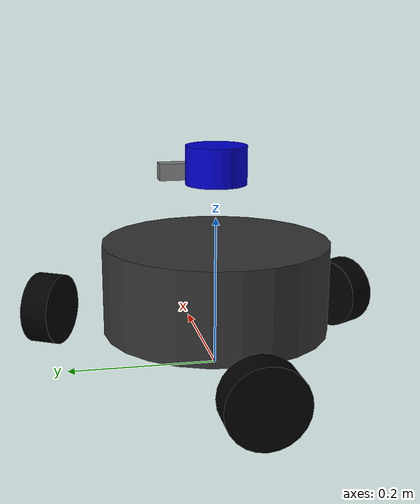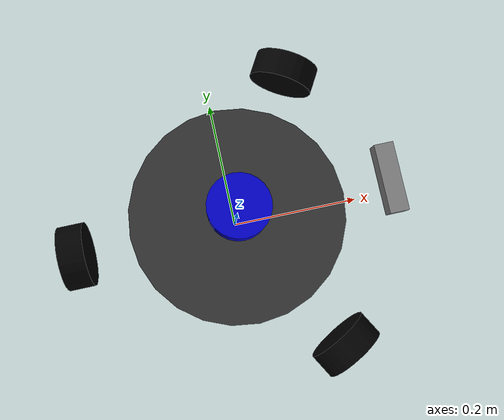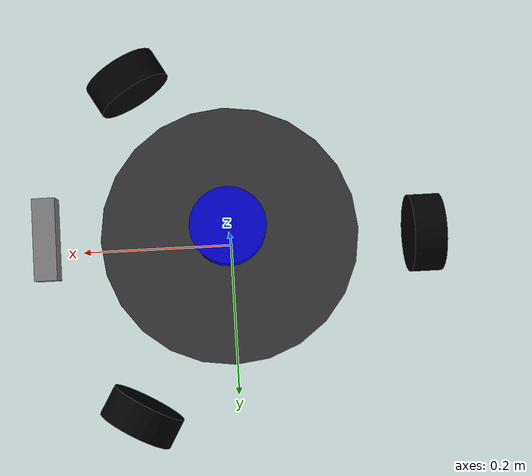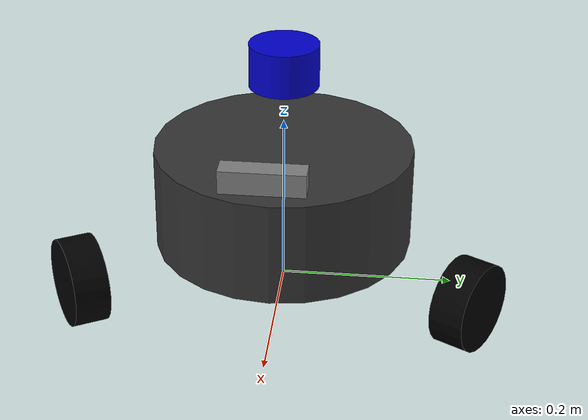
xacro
<?xml version="1.0"?>
<robot name="omni_robot" xmlns:xacro="http://ros.org/wiki/xacro">

  <!--         Parameters            -->
  <xacro:property name="wheel_radius"  value="0.050"/>
  <xacro:property name="wheel_width"   value="0.040"/>
  <xacro:property name="wheel_base"    value="0.250"/>
  <xacro:property name="base_radius"   value="0.150"/>
  <xacro:property name="base_height"   value="0.120"/>
  <xacro:property name="chassis_mass"  value="4.0"/>
  <xacro:property name="wheel_mass"    value="0.3"/>
  <xacro:property name="lidar_height"  value="0.100"/>
  <xacro:property name="camera_x"      value="0.200"/>
  <xacro:property name="camera_z"      value="0.060"/>
  <!-- pi is a xacro built-in: ${pi} → 3.14159... (no need to redefine) -->

  <!--         Materials             -->
  <material name="dark_gray"><color rgba="0.2 0.2 0.2 1.0"/></material>
  <material name="gray">     <color rgba="0.5 0.5 0.5 1.0"/></material>
  <material name="blue">     <color rgba="0.0 0.0 0.8 1.0"/></material>
  <material name="black">    <color rgba="0.0 0.0 0.0 1.0"/></material>
  <material name="red">      <color rgba="0.8 0.0 0.0 1.0"/></material>

  <!-- ros2_control removed: using Gazebo Harmonic native plugins
       VelocityControl  → direct body motion via /cmd_vel
       OdometryPublisher → publishes /odom and TF                    -->

  <!--         Macros                -->
  <xacro:macro name="omni_wheel" params="name pos_x pos_y wheel_angle">
    <link name="${name}">
      <visual>
        <origin xyz="0 0 0" rpy="${pi/2} 0 0"/>
        <geometry>
          <cylinder radius="${wheel_radius}" length="${wheel_width}"/>
        </geometry>
        <material name="black"/>
      </visual>
      <collision>
        <origin xyz="0 0 0" rpy="${pi/2} 0 0"/>
        <geometry>
          <cylinder radius="${wheel_radius}" length="${wheel_width}"/>
        </geometry>
      </collision>
      <inertial>
        <mass value="${wheel_mass}"/>
        <inertia
          ixx="${wheel_mass/12*(3*wheel_radius*wheel_radius + wheel_width*wheel_width)}"
          ixy="0" ixz="0"
          iyy="${wheel_mass/12*(3*wheel_radius*wheel_radius + wheel_width*wheel_width)}"
          iyz="0"
          izz="${wheel_mass/2*wheel_radius*wheel_radius}"/>
      </inertial>
    </link>

    <joint name="${name}_joint" type="continuous">
      <parent link="base_link"/>
      <child link="${name}"/>
      <!-- wheel center = base_link_z - base_height/2 = 0.11 - 0.06 = 0.05m (ground level) -->
      <origin xyz="${pos_x} ${pos_y} ${-base_height/2}"
              rpy="0 0 ${wheel_angle}"/>
      <axis xyz="0 1 0"/>
    </joint>
  </xacro:macro>

  <!--         Links                 -->

  <link name="base_footprint"/>
  <joint name="base_footprint_joint" type="fixed">
    <parent link="base_footprint"/>
    <child link="base_link"/>
    <!-- wheel center is wheel_radius above ground; body sits above that -->
    <!-- base_link center = wheel_radius + base_height/2 = 0.05 + 0.06 = 0.11 m -->
    <origin xyz="0 0 ${wheel_radius + base_height/2}" rpy="0 0 0"/>
  </joint>

  <!-- Main body -->
  <link name="base_link">
    <visual>
      <origin xyz="0 0 0" rpy="0 0 0"/>
      <geometry>
        <cylinder radius="${base_radius}" length="${base_height}"/>
      </geometry>
      <material name="dark_gray"/>
    </visual>
    <collision>
      <origin xyz="0 0 0" rpy="0 0 0"/>
      <geometry>
        <cylinder radius="${base_radius}" length="${base_height}"/>
      </geometry>
    </collision>
    <inertial>
      <mass value="${chassis_mass}"/>
      <inertia
        ixx="${chassis_mass/12*(3*base_radius*base_radius + base_height*base_height)}"
        ixy="0" ixz="0"
        iyy="${chassis_mass/12*(3*base_radius*base_radius + base_height*base_height)}"
        iyz="0"
        izz="${chassis_mass/2*base_radius*base_radius}"/>
    </inertial>
  </link>

  <xacro:omni_wheel name="wheel_1"
    pos_x="${wheel_base * 0.5}"   pos_y="${-wheel_base * 0.866}"
    wheel_angle="${pi/6}"/>

  <xacro:omni_wheel name="wheel_2"
    pos_x="${wheel_base * 0.5}"   pos_y="${wheel_base * 0.866}"
    wheel_angle="${-pi/6}"/>

  <xacro:omni_wheel name="wheel_3"
    pos_x="${-wheel_base}"  pos_y="0.0"
    wheel_angle="${pi/2}"/>

  <!-- LiDAR link -->
  <link name="laser">
    <visual>
      <origin xyz="0 0 0" rpy="0 0 0"/>
      <geometry>
        <cylinder radius="0.04" length="0.05"/>
      </geometry>
      <material name="blue"/>
    </visual>
    <collision>
      <geometry>
        <cylinder radius="0.04" length="0.05"/>
      </geometry>
    </collision>
    <inertial>
      <mass value="0.1"/>
      <inertia ixx="0.001" ixy="0" ixz="0"
               iyy="0.001" iyz="0" izz="0.001"/>
    </inertial>
  </link>

  <joint name="laser_joint" type="fixed">
    <parent link="base_link"/>
    <child link="laser"/>
    <origin xyz="0 0 ${base_height/2 + lidar_height}" rpy="0 0 0"/>
  </joint>

  <!-- Camera link (Intel RealSense D435b) -->
  <link name="camera_link">
    <visual>
      <origin xyz="0 0 0" rpy="0 0 0"/>
      <geometry>
        <box size="0.025 0.090 0.025"/>
      </geometry>
      <material name="gray"/>
    </visual>
    <collision>
      <geometry>
        <box size="0.025 0.090 0.025"/>
      </geometry>
    </collision>
    <inertial>
      <mass value="0.08"/>
      <inertia ixx="0.001" ixy="0" ixz="0"
               iyy="0.001" iyz="0" izz="0.001"/>
    </inertial>
  </link>

  <joint name="camera_joint" type="fixed">
    <parent link="base_link"/>
    <child link="camera_link"/>
    <origin xyz="${camera_x} 0 ${base_height/2 + camera_z}" rpy="0 0 0"/>
  </joint>

  <link name="camera_optical_frame"/>
  <joint name="camera_optical_joint" type="fixed">
    <parent link="camera_link"/>
    <child link="camera_optical_frame"/>
    <origin xyz="0 0 0" rpy="${-pi/2} 0 ${-pi/2}"/>
  </joint>

  <!-- IMU link -->
  <link name="imu_link">
    <inertial>
      <mass value="0.01"/>
      <inertia ixx="0.0001" ixy="0" ixz="0"
               iyy="0.0001" iyz="0" izz="0.0001"/>
    </inertial>
  </link>

  <joint name="imu_joint" type="fixed">
    <parent link="base_link"/>
    <child link="imu_link"/>
    <origin xyz="0 0 0" rpy="0 0 0"/>
  </joint>

  <!--  Gazebo Harmonic Plugins      -->

  <!-- Holonomic body motion: ROS /cmd_vel → VelocityControl plugin
       Twist.linear.x/y → m/s, Twist.angular.z → rad/s (body frame) -->
  <gazebo>
    <plugin filename="gz-sim-velocity-control-system"
            name="gz::sim::systems::VelocityControl">
      <topic>/model/omni_robot/cmd_vel</topic>
    </plugin>
  </gazebo>

  <!-- Publishes joint angles → ros_gz_bridge bridges to /joint_states
       → robot_state_publisher updates wheel TFs (animation in RViz) -->
  <gazebo>
    <plugin filename="gz-sim-joint-state-publisher-system"
            name="gz::sim::systems::JointStatePublisher">
      <topic>/model/omni_robot/joint_states</topic>
    </plugin>
  </gazebo>

  <gazebo>
    <plugin filename="gz-sim-odometry-publisher-system"
            name="gz::sim::systems::OdometryPublisher">
      <odom_frame>odom</odom_frame>
      <robot_base_frame>base_link</robot_base_frame>
      <publish_tf>false</publish_tf>
      <odom_topic>/model/omni_robot/odometry</odom_topic>
      <update_frequency>20</update_frequency>
    </plugin>
  </gazebo>

  <!-- Wheel friction (omni: low mu2 for lateral sliding) -->
  <gazebo reference="wheel_1">
    <mu1>1.0</mu1>
    <mu2>0.1</mu2>
  </gazebo>
  <gazebo reference="wheel_2">
    <mu1>1.0</mu1>
    <mu2>0.1</mu2>
  </gazebo>
  <gazebo reference="wheel_3">
    <mu1>1.0</mu1>
    <mu2>0.1</mu2>
  </gazebo>

  <!-- LiDAR sensor (Gazebo Harmonic: gpu_lidar) -->
  <!-- Bridged via ros_gz_bridge: /lidar_gz → /scan -->
  <gazebo reference="laser">
    <sensor name="lidar_sensor" type="gpu_lidar">
      <always_on>true</always_on>
      <visualize>true</visualize>
      <update_rate>7</update_rate>
      <topic>/lidar_gz</topic>
      <gz_frame_id>laser</gz_frame_id>
      <lidar>
        <scan>
          <horizontal>
            <samples>360</samples>
            <resolution>1</resolution>
            <min_angle>-3.14159265</min_angle>
            <max_angle>3.14159265</max_angle>
          </horizontal>
        </scan>
        <range>
          <min>0.10</min>
          <max>8.0</max>
          <resolution>0.01</resolution>
        </range>
        <noise>
          <type>gaussian</type>
          <mean>0.0</mean>
          <stddev>0.01</stddev>
        </noise>
      </lidar>
    </sensor>
  </gazebo>

  <!-- IMU sensor (Gazebo Harmonic) -->
  <!-- Bridged via ros_gz_bridge: /imu_gz → /imu -->
  <gazebo reference="imu_link">
    <sensor name="imu_sensor" type="imu">
      <always_on>true</always_on>
      <update_rate>100</update_rate>
      <topic>/imu_gz</topic>
      <gz_frame_id>imu_link</gz_frame_id>
      <imu>
        <angular_velocity>
          <x><noise type="gaussian"><mean>0</mean><stddev>0.009</stddev></noise></x>
          <y><noise type="gaussian"><mean>0</mean><stddev>0.009</stddev></noise></y>
          <z><noise type="gaussian"><mean>0</mean><stddev>0.009</stddev></noise></z>
        </angular_velocity>
        <linear_acceleration>
          <x><noise type="gaussian"><mean>0</mean><stddev>0.021</stddev></noise></x>
          <y><noise type="gaussian"><mean>0</mean><stddev>0.021</stddev></noise></y>
          <z><noise type="gaussian"><mean>0</mean><stddev>0.021</stddev></noise></z>
        </linear_acceleration>
      </imu>
    </sensor>
  </gazebo>

</robot>
